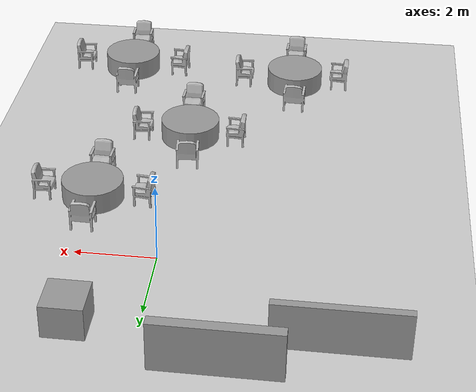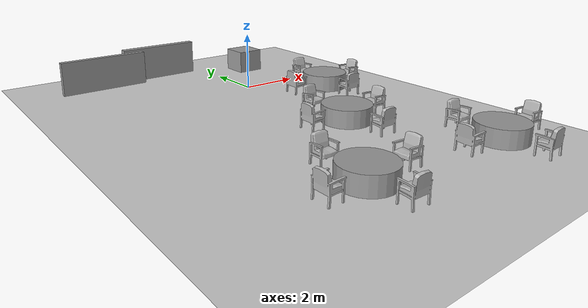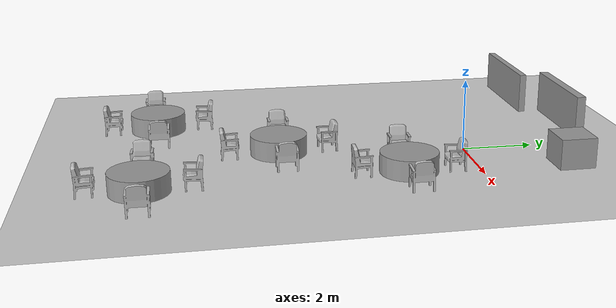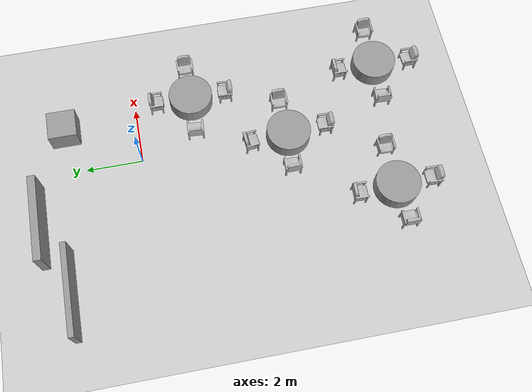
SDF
<sdf version="1.7">
 <world name="default">
  <light name="sun" type="directional">
   <pose>0 0 10 0 -0 0</pose>
   <diffuse>0.8 0.8 0.8 1</diffuse>
   <specular>0.2 0.2 0.2 1</specular>
   <attenuation>
    <range>1000</range>
    <constant>0.9</constant>
    <linear>0.01</linear>
    <quadratic>0.001</quadratic>
   </attenuation>
   <direction>0 0.5 -0.9</direction>
   <spot><inner_angle>0</inner_angle><outer_angle>0</outer_angle><falloff>0</falloff></spot>
  </light>
  <light name="point_light" type="point">
   <pose>0 -0.377195 6.59868 0 -0 0</pose>
   <diffuse>0.784314 0.784314 0.784314 1</diffuse>
   <specular>0.0980392 0.0980392 0.0980392 1</specular>
   <attenuation>
    <range>50</range>
    <constant>0.8</constant>
    <linear>0</linear>
    <quadratic>0.001</quadratic>
   </attenuation>
   <cast_shadows>0</cast_shadows>
   <direction>0 0 -1</direction>
   <spot><inner_angle>0</inner_angle><outer_angle>0</outer_angle><falloff>0</falloff></spot>
  </light>
  <model name="ground_plane">
   <static>1</static>
   <link name="link">
    <collision name="collision">
     <geometry><plane><normal>0 0 1</normal><size>100 100</size></plane></geometry>
     <surface>
      <contact><collide_bitmask>65535</collide_bitmask></contact>
      <friction><ode><mu>100</mu><mu2>50</mu2></ode></friction>
     </surface>
    </collision>
    <visual name="visual">
     <cast_shadows>0</cast_shadows>
     <geometry><plane><normal>0 0 1</normal><size>100 100</size></plane></geometry>
     <material>
      <script><uri>file://media/materials/scripts/gazebo.material</uri><name>Gazebo/Grey</name></script>
     </material>
    </visual>
   </link>
  </model>
  <gravity>0 0 -9.8</gravity>
  <magnetic_field>6e-06 2.3e-05 -4.2e-05</magnetic_field>
  <atmosphere type="adiabatic"/>
  <physics type="ode">
   <max_step_size>0.001</max_step_size>
   <real_time_factor>1</real_time_factor>
   <real_time_update_rate>1000</real_time_update_rate>
  </physics>
  <scene><ambient>0.4 0.4 0.4 1</ambient><background>0.7 0.7 0.7 1</background><shadows>1</shadows></scene>
  <spherical_coordinates>
   <surface_model>EARTH_WGS84</surface_model>
   <latitude_deg>0</latitude_deg>
   <longitude_deg>0</longitude_deg>
   <elevation>0</elevation>
   <heading_deg>0</heading_deg>
  </spherical_coordinates>
  <model name="Chair">
   <link name="body">
    <pose>0 0 0 0 -0 1.5708</pose>
    <visual name="visual">
     <geometry>
      <mesh><uri>model://Chair/meshes/Chair.obj</uri><scale>0.00817 0.00817 0.00817</scale></mesh>
     </geometry>
    </visual>
    <collision name="collision">
     <geometry>
      <mesh><uri>model://Chair/meshes/Chair.obj</uri><scale>0.00817 0.00817 0.00817</scale></mesh>
     </geometry>
    </collision>
    <inertial>
     <inertia><ixx>1</ixx><ixy>0</ixy><ixz>0</ixz><iyy>1</iyy><iyz>0</iyz><izz>1</izz></inertia>
     <mass>1</mass>
    </inertial>
   </link>
   <pose>-3.88514 -8.57719 0.189804 1e-05 4e-06 -0</pose>
  </model>
  <model name="Chair_clone">
   <link name="body">
    <pose>0 0 0 0 -0 1.5708</pose>
    <visual name="visual">
     <geometry>
      <mesh><uri>model://Chair/meshes/Chair.obj</uri><scale>0.00817 0.00817 0.00817</scale></mesh>
     </geometry>
    </visual>
    <collision name="collision">
     <geometry>
      <mesh><uri>model://Chair/meshes/Chair.obj</uri><scale>0.00817 0.00817 0.00817</scale></mesh>
     </geometry>
    </collision>
    <inertial>
     <inertia><ixx>1</ixx><ixy>0</ixy><ixz>0</ixz><iyy>1</iyy><iyz>0</iyz><izz>1</izz></inertia>
     <mass>1</mass>
    </inertial>
   </link>
   <pose>-1.25187 -8.45181 0.1898 2e-06 0 3.1358</pose>
  </model>
  <model name="Chair_clone_0">
   <link name="body">
    <pose>0 0 0 0 -0 1.5708</pose>
    <visual name="visual">
     <geometry>
      <mesh><uri>model://Chair/meshes/Chair.obj</uri><scale>0.00817 0.00817 0.00817</scale></mesh>
     </geometry>
    </visual>
    <collision name="collision">
     <geometry>
      <mesh><uri>model://Chair/meshes/Chair.obj</uri><scale>0.00817 0.00817 0.00817</scale></mesh>
     </geometry>
    </collision>
    <inertial>
     <inertia><ixx>1</ixx><ixy>0</ixy><ixz>0</ixz><iyy>1</iyy><iyz>0</iyz><izz>1</izz></inertia>
     <mass>1</mass>
    </inertial>
   </link>
   <pose>-2.7328 -7.19117 0.189808 1.2e-05 -1.5e-05 -1.6177</pose>
  </model>
  <model name="Chair_clone_1">
   <link name="body">
    <pose>0 0 0 0 -0 1.5708</pose>
    <visual name="visual">
     <geometry>
      <mesh><uri>model://Chair/meshes/Chair.obj</uri><scale>0.00817 0.00817 0.00817</scale></mesh>
     </geometry>
    </visual>
    <collision name="collision">
     <geometry>
      <mesh><uri>model://Chair/meshes/Chair.obj</uri><scale>0.00817 0.00817 0.00817</scale></mesh>
     </geometry>
    </collision>
    <inertial>
     <inertia><ixx>1</ixx><ixy>0</ixy><ixz>0</ixz><iyy>1</iyy><iyz>0</iyz><izz>1</izz></inertia>
     <mass>1</mass>
    </inertial>
   </link>
   <pose>-2.62176 -9.7243 0.189791 1e-06 -1e-06 1.54913</pose>
  </model>
  <model name="Chair_clone_clone">
   <link name="body">
    <pose>0 0 0 0 -0 1.5708</pose>
    <visual name="visual">
     <geometry>
      <mesh><uri>model://Chair/meshes/Chair.obj</uri><scale>0.00817 0.00817 0.00817</scale></mesh>
     </geometry>
    </visual>
    <collision name="collision">
     <geometry>
      <mesh><uri>model://Chair/meshes/Chair.obj</uri><scale>0.00817 0.00817 0.00817</scale></mesh>
     </geometry>
    </collision>
    <inertial>
     <inertia><ixx>1</ixx><ixy>0</ixy><ixz>0</ixz><iyy>1</iyy><iyz>0</iyz><izz>1</izz></inertia>
     <mass>1</mass>
    </inertial>
   </link>
   <pose>3.50441 -8.89697 0.1898 3e-06 6e-06 3.1358</pose>
  </model>
  <model name="Chair_clone_clone_0">
   <link name="body">
    <pose>0 0 0 0 -0 1.5708</pose>
    <visual name="visual">
     <geometry>
      <mesh><uri>model://Chair/meshes/Chair.obj</uri><scale>0.00817 0.00817 0.00817</scale></mesh>
     </geometry>
    </visual>
    <collision name="collision">
     <geometry>
      <mesh><uri>model://Chair/meshes/Chair.obj</uri><scale>0.00817 0.00817 0.00817</scale></mesh>
     </geometry>
    </collision>
    <inertial>
     <inertia><ixx>1</ixx><ixy>0</ixy><ixz>0</ixz><iyy>1</iyy><iyz>0</iyz><izz>1</izz></inertia>
     <mass>1</mass>
    </inertial>
   </link>
   <pose>2.0891 -7.63004 0.189804 -1e-05 9e-06 -1.58512</pose>
  </model>
  <model name="Chair_clone_clone_1">
   <link name="body">
    <pose>0 0 0 0 -0 1.5708</pose>
    <visual name="visual">
     <geometry>
      <mesh><uri>model://Chair/meshes/Chair.obj</uri><scale>0.00817 0.00817 0.00817</scale></mesh>
     </geometry>
    </visual>
    <collision name="collision">
     <geometry>
      <mesh><uri>model://Chair/meshes/Chair.obj</uri><scale>0.00817 0.00817 0.00817</scale></mesh>
     </geometry>
    </collision>
    <inertial>
     <inertia><ixx>1</ixx><ixy>0</ixy><ixz>0</ixz><iyy>1</iyy><iyz>0</iyz><izz>1</izz></inertia>
     <mass>1</mass>
    </inertial>
   </link>
   <pose>0.780458 -8.86103 0.189801 0 6e-06 -0.04496</pose>
  </model>
  <model name="Chair_clone_clone_2">
   <link name="body">
    <pose>0 0 0 0 -0 1.5708</pose>
    <visual name="visual">
     <geometry>
      <mesh><uri>model://Chair/meshes/Chair.obj</uri><scale>0.00817 0.00817 0.00817</scale></mesh>
     </geometry>
    </visual>
    <collision name="collision">
     <geometry>
      <mesh><uri>model://Chair/meshes/Chair.obj</uri><scale>0.00817 0.00817 0.00817</scale></mesh>
     </geometry>
    </collision>
    <inertial>
     <inertia><ixx>1</ixx><ixy>0</ixy><ixz>0</ixz><iyy>1</iyy><iyz>0</iyz><izz>1</izz></inertia>
     <mass>1</mass>
    </inertial>
   </link>
   <pose>2.08574 -10.1848 0.189805 -1.4e-05 8e-06 1.60156</pose>
  </model>
  <model name="Chair_clone_clone_3">
   <link name="body">
    <pose>0 0 0 0 -0 1.5708</pose>
    <visual name="visual">
     <geometry>
      <mesh><uri>model://Chair/meshes/Chair.obj</uri><scale>0.00817 0.00817 0.00817</scale></mesh>
     </geometry>
    </visual>
    <collision name="collision">
     <geometry>
      <mesh><uri>model://Chair/meshes/Chair.obj</uri><scale>0.00817 0.00817 0.00817</scale></mesh>
     </geometry>
    </collision>
    <inertial>
     <inertia><ixx>1</ixx><ixy>0</ixy><ixz>0</ixz><iyy>1</iyy><iyz>0</iyz><izz>1</izz></inertia>
     <mass>1</mass>
    </inertial>
   </link>
   <pose>1.16333 -5.15299 0.189802 -9e-06 -0 3.1358</pose>
  </model>
  <model name="Chair_clone_clone_4">
   <link name="body">
    <pose>0 0 0 0 -0 1.5708</pose>
    <visual name="visual">
     <geometry>
      <mesh><uri>model://Chair/meshes/Chair.obj</uri><scale>0.00817 0.00817 0.00817</scale></mesh>
     </geometry>
    </visual>
    <collision name="collision">
     <geometry>
      <mesh><uri>model://Chair/meshes/Chair.obj</uri><scale>0.00817 0.00817 0.00817</scale></mesh>
     </geometry>
    </collision>
    <inertial>
     <inertia><ixx>1</ixx><ixy>0</ixy><ixz>0</ixz><iyy>1</iyy><iyz>0</iyz><izz>1</izz></inertia>
     <mass>1</mass>
    </inertial>
   </link>
   <pose>-0.176043 -3.91738 0.189798 1.9e-05 1.5e-05 -1.48741</pose>
  </model>
  <model name="Chair_clone_clone_5">
   <link name="body">
    <pose>0 0 0 0 -0 1.5708</pose>
    <visual name="visual">
     <geometry>
      <mesh><uri>model://Chair/meshes/Chair.obj</uri><scale>0.00817 0.00817 0.00817</scale></mesh>
     </geometry>
    </visual>
    <collision name="collision">
     <geometry>
      <mesh><uri>model://Chair/meshes/Chair.obj</uri><scale>0.00817 0.00817 0.00817</scale></mesh>
     </geometry>
    </collision>
    <inertial>
     <inertia><ixx>1</ixx><ixy>0</ixy><ixz>0</ixz><iyy>1</iyy><iyz>0</iyz><izz>1</izz></inertia>
     <mass>1</mass>
    </inertial>
   </link>
   <pose>0.023031 -6.53857 0.189803 1.2e-05 -1e-06 1.55154</pose>
  </model>
  <model name="Chair_clone_clone_6">
   <link name="body">
    <pose>0 0 0 0 -0 1.5708</pose>
    <visual name="visual">
     <geometry>
      <mesh><uri>model://Chair/meshes/Chair.obj</uri><scale>0.00817 0.00817 0.00817</scale></mesh>
     </geometry>
    </visual>
    <collision name="collision">
     <geometry>
      <mesh><uri>model://Chair/meshes/Chair.obj</uri><scale>0.00817 0.00817 0.00817</scale></mesh>
     </geometry>
    </collision>
    <inertial>
     <inertia><ixx>1</ixx><ixy>0</ixy><ixz>0</ixz><iyy>1</iyy><iyz>0</iyz><izz>1</izz></inertia>
     <mass>1</mass>
    </inertial>
   </link>
   <pose>-1.27615 -5.12207 0.189801 -3e-06 -2e-06 -0.00144</pose>
  </model>
  <model name="Chair_clone_clone_7">
   <link name="body">
    <pose>0 0 0 0 -0 1.5708</pose>
    <visual name="visual">
     <geometry>
      <mesh><uri>model://Chair/meshes/Chair.obj</uri><scale>0.00817 0.00817 0.00817</scale></mesh>
     </geometry>
    </visual>
    <collision name="collision">
     <geometry>
      <mesh><uri>model://Chair/meshes/Chair.obj</uri><scale>0.00817 0.00817 0.00817</scale></mesh>
     </geometry>
    </collision>
    <inertial>
     <inertia><ixx>1</ixx><ixy>0</ixy><ixz>0</ixz><iyy>1</iyy><iyz>0</iyz><izz>1</izz></inertia>
     <mass>1</mass>
    </inertial>
   </link>
   <pose>3.1412 -2.04743 0.189801 7e-06 -4e-06 3.1358</pose>
  </model>
  <model name="Chair_clone_clone_8">
   <link name="body">
    <pose>0 0 0 0 -0 1.5708</pose>
    <visual name="visual">
     <geometry>
      <mesh><uri>model://Chair/meshes/Chair.obj</uri><scale>0.00817 0.00817 0.00817</scale></mesh>
     </geometry>
    </visual>
    <collision name="collision">
     <geometry>
      <mesh><uri>model://Chair/meshes/Chair.obj</uri><scale>0.00817 0.00817 0.00817</scale></mesh>
     </geometry>
    </collision>
    <inertial>
     <inertia><ixx>1</ixx><ixy>0</ixy><ixz>0</ixz><iyy>1</iyy><iyz>0</iyz><izz>1</izz></inertia>
     <mass>1</mass>
    </inertial>
   </link>
   <pose>1.94765 -3.26814 0.189793 -7e-06 5e-06 1.55139</pose>
  </model>
  <model name="Chair_clone_clone_9">
   <link name="body">
    <pose>0 0 0 0 -0 1.5708</pose>
    <visual name="visual">
     <geometry>
      <mesh><uri>model://Chair/meshes/Chair.obj</uri><scale>0.00817 0.00817 0.00817</scale></mesh>
     </geometry>
    </visual>
    <collision name="collision">
     <geometry>
      <mesh><uri>model://Chair/meshes/Chair.obj</uri><scale>0.00817 0.00817 0.00817</scale></mesh>
     </geometry>
    </collision>
    <inertial>
     <inertia><ixx>1</ixx><ixy>0</ixy><ixz>0</ixz><iyy>1</iyy><iyz>0</iyz><izz>1</izz></inertia>
     <mass>1</mass>
    </inertial>
   </link>
   <pose>0.685737 -2.04115 0.189802 -5e-06 2e-06 -0.05226</pose>
  </model>
  <model name="Chair_clone_clone_10">
   <link name="body">
    <pose>0 0 0 0 -0 1.5708</pose>
    <visual name="visual">
     <geometry>
      <mesh><uri>model://Chair/meshes/Chair.obj</uri><scale>0.00817 0.00817 0.00817</scale></mesh>
     </geometry>
    </visual>
    <collision name="collision">
     <geometry>
      <mesh><uri>model://Chair/meshes/Chair.obj</uri><scale>0.00817 0.00817 0.00817</scale></mesh>
     </geometry>
    </collision>
    <inertial>
     <inertia><ixx>1</ixx><ixy>0</ixy><ixz>0</ixz><iyy>1</iyy><iyz>0</iyz><izz>1</izz></inertia>
     <mass>1</mass>
    </inertial>
   </link>
   <pose>1.93455 -0.859527 0.189805 -9e-06 -8e-06 -1.5897</pose>
  </model>
  <model name="unit_cylinder_clone">
   <pose>-0.062278 -5.23892 0.46497 -3e-05 -6e-06 -0.000133</pose>
   <link name="link">
    <inertial>
     <mass>1</mass>
     <inertia><ixx>0.145833</ixx><ixy>0</ixy><ixz>0</ixz><iyy>0.145833</iyy><iyz>0</iyz><izz>0.125</izz></inertia>
    </inertial>
    <collision name="collision">
     <geometry><cylinder><radius>0.774479</radius><length>0.55035</length></cylinder></geometry>
    </collision>
    <visual name="visual">
     <geometry><cylinder><radius>0.774479</radius><length>0.55035</length></cylinder></geometry>
     <material>
      <script><name>Gazebo/Grey</name><uri>file://media/materials/scripts/gazebo.material</uri></script>
     </material>
    </visual>
   </link>
  </model>
  <model name="unit_cylinder_clone_0">
   <pose>2.15952 -8.91231 0.464976 2e-06 -0 -5.5e-05</pose>
   <link name="link">
    <inertial>
     <mass>1</mass>
     <inertia><ixx>0.145833</ixx><ixy>0</ixy><ixz>0</ixz><iyy>0.145833</iyy><iyz>0</iyz><izz>0.125</izz></inertia>
    </inertial>
    <collision name="collision">
     <geometry><cylinder><radius>0.774479</radius><length>0.55035</length></cylinder></geometry>
    </collision>
    <visual name="visual">
     <geometry><cylinder><radius>0.774479</radius><length>0.55035</length></cylinder></geometry>
     <material>
      <script><name>Gazebo/Grey</name><uri>file://media/materials/scripts/gazebo.material</uri></script>
     </material>
    </visual>
   </link>
  </model>
  <model name="unit_cylinder_clone_1">
   <pose>1.94856 -2.06525 0.46497 -1e-06 -3e-05 -8.9e-05</pose>
   <link name="link">
    <inertial>
     <mass>1</mass>
     <inertia><ixx>0.145833</ixx><ixy>0</ixy><ixz>0</ixz><iyy>0.145833</iyy><iyz>0</iyz><izz>0.125</izz></inertia>
    </inertial>
    <collision name="collision">
     <geometry><cylinder><radius>0.774479</radius><length>0.55035</length></cylinder></geometry>
    </collision>
    <visual name="visual">
     <geometry><cylinder><radius>0.774479</radius><length>0.55035</length></cylinder></geometry>
     <material>
      <script><name>Gazebo/Grey</name><uri>file://media/materials/scripts/gazebo.material</uri></script>
     </material>
    </visual>
   </link>
  </model>
  <model name="unit_box_0">
   <pose>-4.37891 2.80234 0.689802 -0 -0 -4.3e-05</pose>
   <link name="link">
    <inertial>
     <mass>1</mass>
     <inertia>
      <ixx>0.166667</ixx>
      <ixy>0</ixy>
      <ixz>0</ixz>
      <iyy>0.166667</iyy>
      <iyz>0</iyz>
      <izz>0.166667</izz>
     </inertia>
    </inertial>
    <collision name="collision"><geometry><box><size>3.04376 0.193933 1.18267</size></box></geometry></collision>
    <visual name="visual">
     <geometry><box><size>3.04376 0.193933 1.18267</size></box></geometry>
     <material>
      <script><name>Gazebo/Grey</name><uri>file://media/materials/scripts/gazebo.material</uri></script>
     </material>
    </visual>
   </link>
  </model>
  <model name="unit_box_1">
   <pose>-1.83759 3.65521 0.561516 -9.9e-05 -0 3e-06</pose>
   <link name="link">
    <inertial>
     <mass>1</mass>
     <inertia>
      <ixx>0.166667</ixx>
      <ixy>0</ixy>
      <ixz>0</ixz>
      <iyy>0.166667</iyy>
      <iyz>0</iyz>
      <izz>0.166667</izz>
     </inertia>
    </inertial>
    <collision name="collision"><geometry><box><size>2.93511 0.265672 1.33845</size></box></geometry></collision>
    <visual name="visual">
     <geometry><box><size>2.93511 0.265672 1.33845</size></box></geometry>
     <material>
      <script><name>Gazebo/Grey</name><uri>file://media/materials/scripts/gazebo.material</uri></script>
     </material>
    </visual>
   </link>
  </model>
  <model name="unit_box">
   <pose>1.56977 2.56992 0.328599 0 -0.001047 1e-06</pose>
   <link name="link">
    <inertial>
     <mass>1</mass>
     <inertia>
      <ixx>0.166667</ixx>
      <ixy>0</ixy>
      <ixz>0</ixz>
      <iyy>0.166667</iyy>
      <iyz>0</iyz>
      <izz>0.166667</izz>
     </inertia>
    </inertial>
    <collision name="collision"><geometry><box><size>1 1 1</size></box></geometry></collision>
    <visual name="visual">
     <geometry><box><size>1 1 1</size></box></geometry>
     <material>
      <script><name>Gazebo/Grey</name><uri>file://media/materials/scripts/gazebo.material</uri></script>
     </material>
    </visual>
   </link>
  </model>
  <model name="unit_cylinder_clone_clone">
   <pose>-2.6552 -8.49537 0.464977 3e-06 1e-06 -0.000132</pose>
   <link name="link">
    <inertial>
     <mass>1</mass>
     <inertia><ixx>0.145833</ixx><ixy>0</ixy><ixz>0</ixz><iyy>0.145833</iyy><iyz>0</iyz><izz>0.125</izz></inertia>
    </inertial>
    <collision name="collision">
     <geometry><cylinder><radius>0.774479</radius><length>0.55035</length></cylinder></geometry>
    </collision>
    <visual name="visual">
     <geometry><cylinder><radius>0.774479</radius><length>0.55035</length></cylinder></geometry>
     <material>
      <script><name>Gazebo/Grey</name><uri>file://media/materials/scripts/gazebo.material</uri></script>
     </material>
    </visual>
   </link>
  </model>
 </world>
</sdf>
